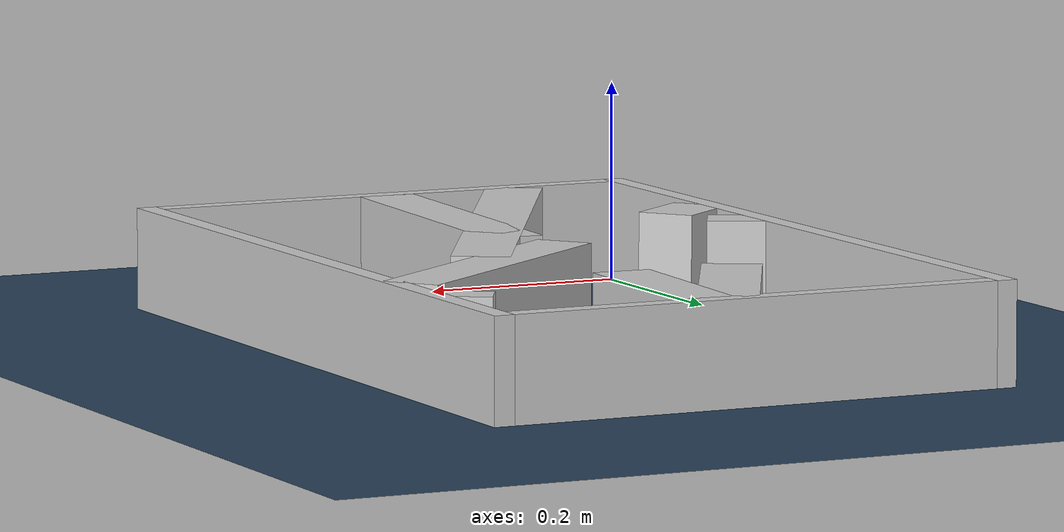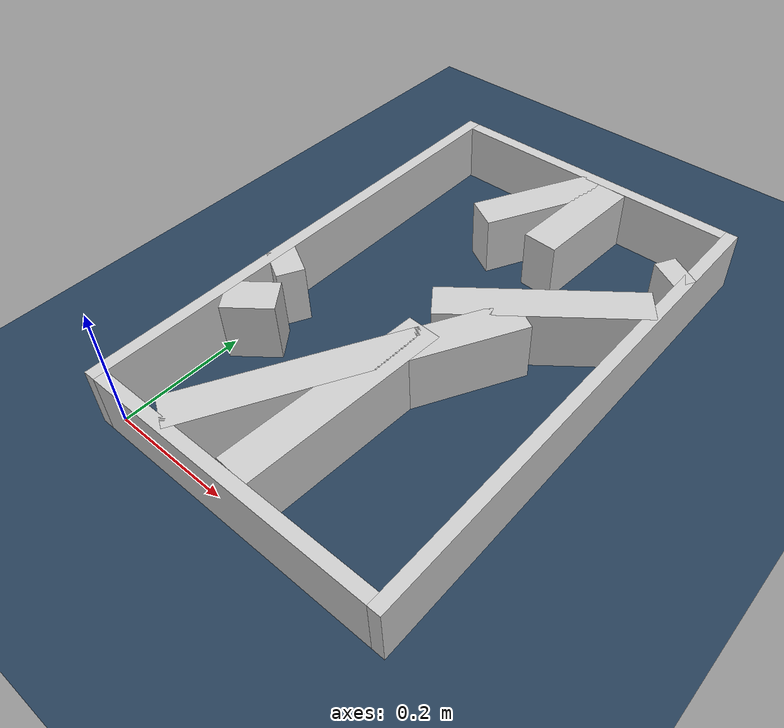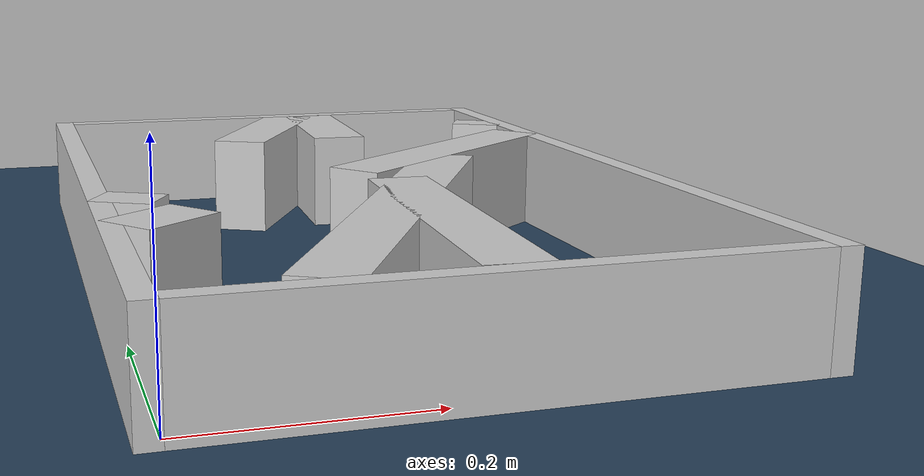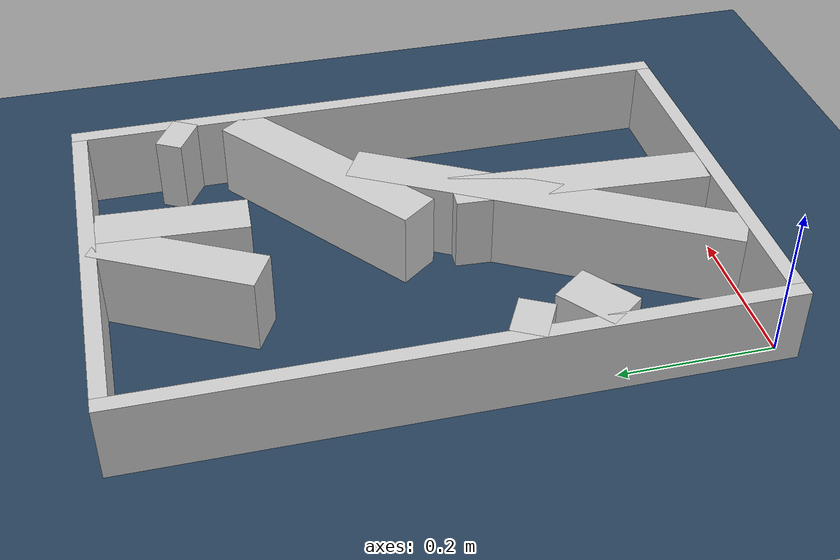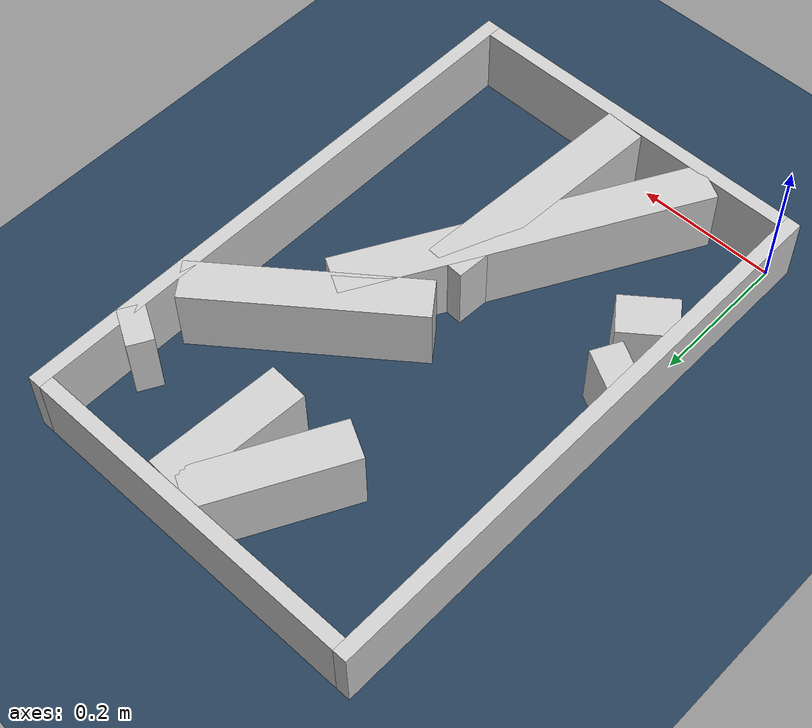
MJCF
<?xml version="1.0" ?>
<mujoco model="generated_real_template">
  <compiler angle="degree"/>
  <option timestep="0.002" integrator="implicitfast" iterations="100" cone="elliptic"/>
  <default>
    <geom density="1"/>
  </default>
  <asset>
    <texture builtin="gradient" height="3072" rgb1="0.3 0.5 0.7" rgb2="0 0 0" type="skybox" width="512"/>
    <texture builtin="checker" height="300" mark="edge" markrgb="0.8 0.8 0.8" name="groundplane" rgb1="0.2 0.3 0.4" rgb2="0.1 0.2 0.3" type="2d" width="300"/>
    <material name="groundplane" reflectance="0.2" texrepeat="5 5" texture="groundplane" texuniform="true"/>
  </asset>
  <worldbody>
    <light dir="0 0 -1" directional="true" pos="0 0 1.5"/>
    <geom name="floor" type="plane" condim="4" friction="0.5 0.005 0.001" material="groundplane" size="0 0 0.05"/>
    <body name="walls">
      <geom name="wall_boundary_left" type="box" condim="4" friction="1.0 0.005 0.0001" rgba="0.8 0.8 0.8 1" pos="-0.010000 0.387500 0.050000" euler="0 0 0.000000" size="0.010000 0.407500 0.050000"/>
      <geom name="wall_boundary_right" type="box" condim="4" friction="1.0 0.005 0.0001" rgba="0.8 0.8 0.8 1" pos="0.500000 0.387500 0.050000" euler="0 0 0.000000" size="0.010000 0.407500 0.050000"/>
      <geom name="wall_boundary_bottom" type="box" condim="4" friction="1.0 0.005 0.0001" rgba="0.8 0.8 0.8 1" pos="0.245000 -0.010000 0.050000" euler="0 0 0.000000" size="0.245000 0.010000 0.050000"/>
      <geom name="wall_boundary_top" type="box" condim="4" friction="1.0 0.005 0.0001" rgba="0.8 0.8 0.8 1" pos="0.245000 0.785000 0.050000" euler="0 0 0.000000" size="0.245000 0.010000 0.050000"/>
      <geom name="wall_inner_1_1" type="box" condim="4" friction="1.0 0.005 0.0001" rgba="0.8 0.8 0.8 1" pos="0.258446 0.165747 0.050000" euler="0 0 86.901667" size="0.165989 0.028500 0.050000"/>
      <geom name="wall_inner_1_2" type="box" condim="4" friction="1.0 0.005 0.0001" rgba="0.8 0.8 0.8 1" pos="0.286336 0.680988 0.050000" euler="0 0 86.901667" size="0.094149 0.028500 0.050000"/>
      <geom name="wall_inner_2_1" type="box" condim="4" friction="1.0 0.005 0.0001" rgba="0.8 0.8 0.8 1" pos="0.364385 0.477655 0.050000" euler="0 0 -142.316831" size="0.158724 0.028500 0.050000"/>
      <geom name="wall_inner_2_2" type="box" condim="4" friction="1.0 0.005 0.0001" rgba="0.8 0.8 0.8 1" pos="0.031839 0.220790 0.050000" euler="0 0 -142.316831" size="0.040231 0.028500 0.050000"/>
      <geom name="wall_inner_3_1" type="box" condim="4" friction="1.0 0.005 0.0001" rgba="0.8 0.8 0.8 1" pos="0.015554 0.304116 0.050000" euler="0 0 61.913802" size="0.022110 0.028500 0.050000"/>
      <geom name="wall_inner_3_2" type="box" condim="4" friction="1.0 0.005 0.0001" rgba="0.8 0.8 0.8 1" pos="0.216744 0.681130 0.050000" euler="0 0 61.913802" size="0.106399 0.028500 0.050000"/>
      <geom name="wall_inner_4_1" type="box" condim="4" friction="1.0 0.005 0.0001" rgba="0.8 0.8 0.8 1" pos="0.476290 0.657315 0.050000" euler="0 0 -119.161742" size="0.018104 0.028500 0.050000"/>
      <geom name="wall_inner_4_2" type="box" condim="4" friction="1.0 0.005 0.0001" rgba="0.8 0.8 0.8 1" pos="0.232857 0.221058 0.050000" euler="0 0 -119.161742" size="0.253145 0.028500 0.050000"/>
    </body>
  </worldbody>
</mujoco>
